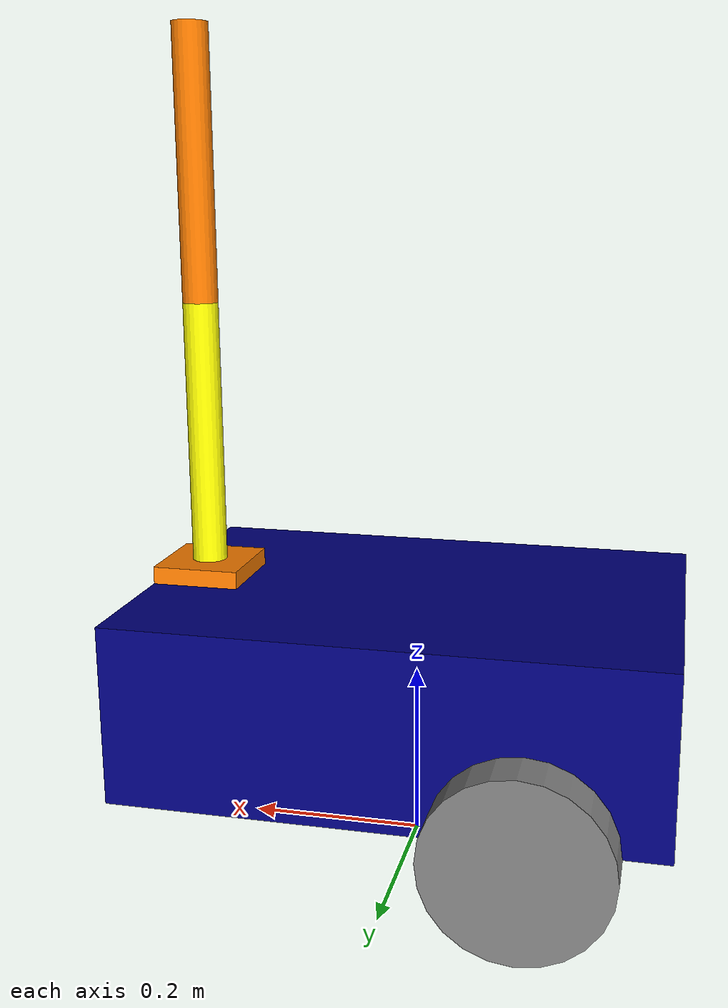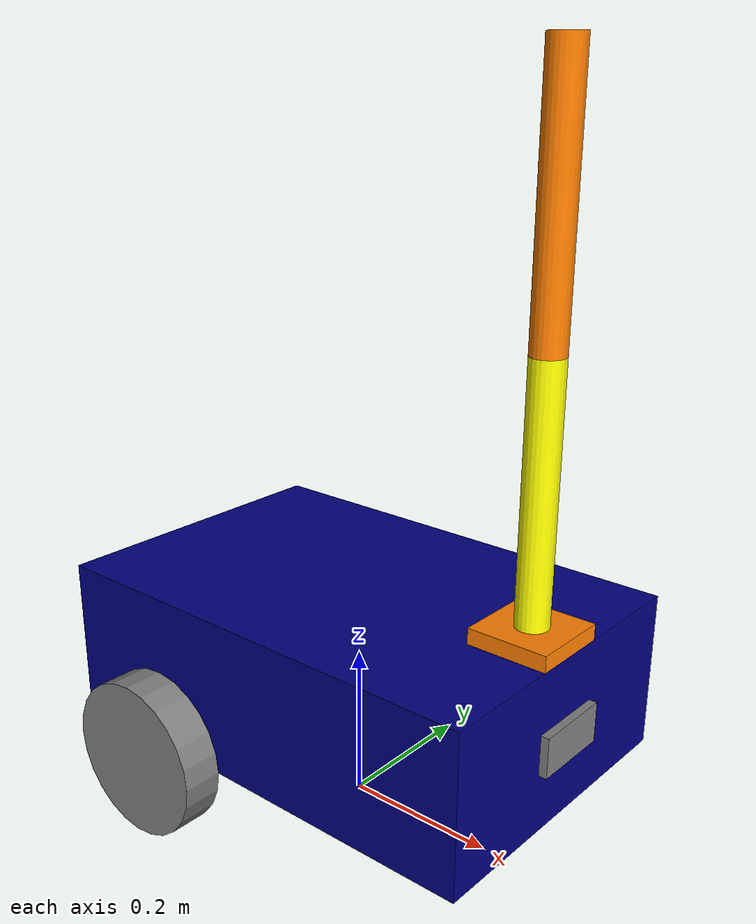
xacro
<?xml version ="1.0"?>
<robot name="mobile_base_with_arm" xmlns:xacro="http://www.ros.org/wiki/xacro">
    <xacro:include filename="$(find my_robot_description)/urdf/common_properties.xacro" />
    <xacro:include filename="$(find my_robot_description)/urdf/mobile_base.xacro" />
    <xacro:include filename="$(find my_robot_description)/urdf/mobile_base_gazebo.xacro" />
    <xacro:include filename="$(find mobile_base_with_arm)/urdf/two_link_arm_base.urdf.xacro" />
    <joint name="mobile_base_arm_base_joint" type="fixed">
        <parent link="base_link"/>
        <child link="arm_base_link"/>
        <origin xyz="${(base_length - arm_base_link_length)/2} 0 ${base_height}" rpy="0 0 0"/>
    </joint>
    <xacro:include filename="$(find my_robot_description)/urdf/camera_gazebo.xacro" />
</robot>

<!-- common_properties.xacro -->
<robot xmlns:xacro="http://www.ros.org/wiki/xacro">
    <material name="blue">
        <color rgba="0 0 0.5 1"/>
    </material>

    <material name="grey">
        <color rgba="0.5 0.5 0.5 1"/>
    </material>

    <xacro:macro name="box_inertia" params="m x y z o_xyz o_rpy">
        <inertial>
            <mass value="${m}"/>
            <origin xyz="${o_xyz}" rpy="${o_rpy}"/>
            <inertia
                ixx="${(1/12.0) * m * (y*y + z*z)}"
                ixy="0.0"
                ixz="0.0"
                iyy="${(1/12.0) * m * (x*x + z*z)}"
                iyz="0.0"
                izz="${(1/12.0) * m * (x*x + y*y)}"
            />
        </inertial>
    </xacro:macro>

    <xacro:macro name="cylinder_inertia" params="m r l o_xyz o_rpy">
        <inertial>
            <mass value="${m}"/>
            <origin xyz="${o_xyz}" rpy="${o_rpy}"/>
            <inertia
                ixx="${(1/12.0) * m * (3*r*r + l*l)}"
                ixy="0.0"
                ixz="0.0"
                iyy="${(1/12.0) * m * (3*r*r + l*l)}"
                iyz="0.0"
                izz="${(1/2.0) * m * r*r}"
            />
        </inertial>
    </xacro:macro>

    <xacro:macro name="sphere_inertia" params="m r o_xyz o_rpy">
        <inertial>
            <mass value="${m}"/>
            <origin xyz="${o_xyz}" rpy="${o_rpy}"/>
            <inertia
                ixx="${(2/5.0) * m * r*r}"
                ixy="0.0"
                ixz="0.0"
                iyy="${(2/5.0) * m * r*r}"
                iyz="0.0"
                izz="${(2/5.0) * m * r*r}"
            />
        </inertial>
    </xacro:macro>
</robot>

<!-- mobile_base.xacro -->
<robot xmlns:xacro="http://www.ros.org/wiki/xacro">
    <xacro:property name="base_length" value="0.6" />
    <xacro:property name="base_width" value="0.4" />
    <xacro:property name="base_height" value="0.2" />
    <xacro:property name="wheel_radius" value="0.1" />
    <xacro:property name="wheel_width" value="0.05" />
    <xacro:macro name="wheel_link" params="prefix">
        <link name="${prefix}_wheel_link">
            <visual>
                    <geometry>
                        <cylinder radius="${wheel_radius}" length="${wheel_width}" />
                    </geometry>
                    <origin xyz="0 0 0" rpy="${pi /2.0} 0 0" />
                <material name="grey"/>
            </visual>

            <collision>
                <geometry>
                    <sphere radius="${wheel_radius}" />
                </geometry>
                <origin xyz="0 0 0" rpy="0 0 0" />
            </collision>

            <xacro:cylinder_inertia m ="1.0" r="${wheel_radius}" l="${wheel_width}"
                                    o_xyz="0 0 0" o_rpy="${pi /2.0} 0 0"/>
        </link>
    </xacro:macro>

    <link name="base_footprint"/>
    <link name="base_link">
        <visual>
            <geometry>
                <box size="${base_length} ${base_width} ${base_height}" />
            </geometry>
            <origin xyz="0 0 ${base_height/2.0}" rpy="0 0 0" />
            <material name="blue"/>
        </visual>

        <collision>
            <geometry>
                <box size="${base_length} ${base_width} ${base_height}" />
            </geometry>
            <origin xyz="0 0 ${base_height/2.0}" rpy="0 0 0" />
        </collision>

        <xacro:box_inertia m ="5.0" x="${base_length}" y="${base_width}" z="${base_height}"
                            o_xyz="0 0 ${base_height/2.0}" o_rpy="0 0 0"/>
    </link>

    <xacro:wheel_link prefix="right"/>
    <xacro:wheel_link prefix="left"/>

    <link name="caster_wheel_link">
        <visual>
            <geometry>
                <sphere radius="${wheel_radius/2.0}" />
            </geometry>
            <origin xyz="0 0 0" rpy="0 0 0" />
            <material name="grey"/>
        </visual>

        <collision>
            <geometry>
                <sphere radius="${wheel_radius/2.0}" />
            </geometry>
            <origin xyz="0 0 0" rpy="0 0 0" />
        </collision>

        <xacro:sphere_inertia m ="0.5" r="${wheel_radius/2.0}"
                              o_xyz="0 0 0" o_rpy="0 0 0"/>
    </link>

    <joint name="base_joint" type="fixed">
        <parent link="base_footprint"/>
        <child link="base_link"/>
        <origin xyz="0 0 ${wheel_radius}" rpy="0 0 0"/>
    </joint>

    <joint name="base_right_wheel_joint" type="continuous">
        <parent link="base_link"/>
        <child link="right_wheel_link"/>
        <origin xyz="-${base_length/4.0} -${(base_width + wheel_width)/2.0} 0" rpy="0 0 0"/>
        <axis xyz="0 1 0"/>
    </joint>

    <joint name="base_left_wheel_joint" type="continuous">
        <parent link="base_link"/>
        <child link="left_wheel_link"/>
        <origin xyz="-${base_length/4.0} ${(base_width + wheel_width)/2.0} 0" rpy="0 0 0"/>
        <axis xyz="0 1 0"/>
    </joint>

    <joint name="base_caster_wheel_joint" type="fixed">
        <parent link="base_link"/>
        <child link="caster_wheel_link"/>
        <origin xyz="${base_length/3.0} 0 -${wheel_radius/2.0}" rpy="0 0 0"/>
    </joint>
</robot>

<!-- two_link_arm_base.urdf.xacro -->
<robot xmlns:xacro="http://www.ros.org/wiki/xacro">
    <xacro:property name="arm_base_link_length" value="0.1" />
    <xacro:property name="arm_base_link_width" value="0.1" />
    <xacro:property name="arm_base_link_height" value="0.02" />
    <xacro:property name="forearm_link_length" value="0.3" />
    <xacro:property name="forearm_link_radius" value="0.02" />
    <xacro:property name="hand_link_radius" value="0.02" />
    <xacro:property name="hand_link_length" value="0.3" />
    <xacro:include filename="common.xacro" />
    <link name="arm_base_link">
        <visual>
            <geometry>
                <box size="${arm_base_link_length} ${arm_base_link_width} ${arm_base_link_height}"/>
            </geometry>
            <origin xyz="0 0 ${arm_base_link_height / 2}" rpy="0 0 0"/>
            <material name="orange"/>
        </visual>
        <collision>
            <geometry>
                <box size="${arm_base_link_length} ${arm_base_link_width} ${arm_base_link_height}"/>
            </geometry>
            <origin xyz="0 0 ${arm_base_link_height / 2}" rpy="0 0 0"/>
        </collision>
        <xacro:box_inertia
            m="0.5"
            x="${arm_base_link_length}"
            y="${arm_base_link_width}"
            z="${arm_base_link_height}"
            o_xyz="0 0 ${arm_base_link_height / 2}"
            o_rpy="0 0 0"
        />
    </link>

    <link name="forearm_link">
        <visual>
            <geometry>
                <cylinder radius="${forearm_link_radius}" length="${forearm_link_length}"/>
            </geometry>
            <origin xyz="0 0 ${forearm_link_length / 2}" rpy="0 0 0"/>
            <material name="yellow"/>
        </visual>
        <collision>
            <geometry>
                <cylinder radius="${forearm_link_radius}" length="${forearm_link_length}"/>
            </geometry>
            <origin xyz="0 0 ${forearm_link_length / 2}" rpy="0 0 0"/>
        </collision>
        <xacro:cylinder_inertia
            m="0.3"
            r="${forearm_link_radius}"
            l="${forearm_link_length}"
            o_xyz="0 0 ${forearm_link_length / 2}"
            o_rpy="0 0 0"
        />
    </link>

    <link name="hand_link">
        <visual>
            <geometry>
                <cylinder radius="${hand_link_radius}" length="${hand_link_length}"/>
            </geometry>
            <origin xyz="0 0 ${hand_link_length / 2}" rpy="0 0 0"/>
            <material name="orange"/>
        </visual>
        <collision>
            <geometry>
                <cylinder radius="${hand_link_radius}" length="${hand_link_length}"/>
            </geometry>
            <origin xyz="0 0 ${hand_link_length / 2}" rpy="0 0 0"/>
        </collision>
        <xacro:cylinder_inertia
            m="0.3"
            r="${hand_link_radius}"
            l="${hand_link_length}"
            o_xyz="0 0 ${hand_link_length / 2}"
            o_rpy="0 0 0"
        />
    </link>

    <joint name="arm_base_forearm_joint" type="revolute">
        <parent link="arm_base_link"/>
        <child link="forearm_link"/>
        <origin xyz="0 0 ${arm_base_link_height}" rpy="0 0 0"/>
        <axis xyz="0 1 0"/>
        <limit lower="0" upper="${pi/2}" effort="100" velocity="100"/>
        <dynamics damping="0.3" friction="0.3"/>
    </joint>

    <joint name="forearm_hand_joint" type="revolute">
        <parent link="forearm_link"/>
        <child link="hand_link"/>
        <origin xyz="0 0 ${forearm_link_length}" rpy="0 0 0"/>
        <axis xyz="0 1 0"/>
        <limit lower="0" upper="${pi/2}" effort="100" velocity="100"/>
        <dynamics damping="0.3" friction="0.3"/>
    </joint>

    <gazebo>
        <plugin
            filename="gz-sim-joint-position-controller-system"
            name="gz::sim::systems::JointPositionController">
            <joint_name>arm_base_forearm_joint</joint_name>
            <p_gain>5.0</p_gain>
        </plugin>
    </gazebo>

    <gazebo>
        <plugin
            filename="gz-sim-joint-position-controller-system"
            name="gz::sim::systems::JointPositionController">
            <joint_name>forearm_hand_joint</joint_name>
            <p_gain>3.0</p_gain>
        </plugin>
    </gazebo>

    <gazebo>
        <plugin
            filename="gz-sim-joint-state-publisher-system"
            name="gz::sim::systems::JointStatePublisher">
            <joint_name>arm_base_forearm_joint</joint_name>
            <joint_name>forearm_hand_joint</joint_name>
        </plugin>
    </gazebo>
</robot>

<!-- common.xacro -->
<robot xmlns:xacro="http://www.ros.org/wiki/xacro">
    <material name="orange">
        <color rgba="1 0.5 0 1"/>
    </material>

    <material name="yellow">
        <color rgba="1 1 0 1"/>
    </material>

</robot>

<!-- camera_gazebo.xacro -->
<robot xmlns:xacro="http://www.ros.org/wiki/xacro">
    <xacro:property name="camera_length" value="0.01" />
    <xacro:property name="camera_width" value="0.1" />
    <xacro:property name="camera_height" value="0.05" />
    <link name="camera_link">
        <visual>
            <geometry>
                <box size="${camera_length} ${camera_width} ${camera_height}"/>
            </geometry>
        <material name="grey"/>
        </visual>
        <collision>
            <geometry>
                <box size="${camera_length} ${camera_width} ${camera_height}"/>
            </geometry>
        </collision>
        <xacro:box_inertia m="0.1" x="${camera_length}" y="${camera_width}" z="${camera_height}"
                            o_xyz="0 0 0" o_rpy="0 0 0" />
    </link>

    <link name="camera_optical_link"/>

    <joint name="camera_optical_joint" type="fixed">
        <parent link="camera_link" />
        <child link="camera_optical_link" />
        <origin xyz="0 0 0" rpy="${-pi/2} 0 ${-pi/2}" />
    </joint>
    <joint name="base_camera_joint" type="fixed">
        <parent link="base_link" />
        <child link="camera_link" />
        <origin xyz="${(base_length + camera_length)/2.0} 0 ${base_height/2.0}" rpy="0 0 0" />
    </joint>

    <gazebo reference="camera_link">
        <sensor type="camera" name="camera">
            <camera>
                <horizontal_fov>1.4</horizontal_fov>
                <image>
                    <width>640</width>
                    <height>480</height>
                    <format>R8G8B8</format>
                </image>
                <clip>
                    <near>0.1</near>
                    <far>15</far>
                </clip>
                <noise>
                    <type>gaussian</type>
                    <mean>0.0</mean>
                    <stddev>0.007</stddev>
                </noise>
                <optical_frame_id>camera_optical_link</optical_frame_id>
                <camera_info_topic>camera/camera_info</camera_info_topic>
            </camera>
            <always_on>1</always_on>
            <update_rate>20.0</update_rate>
            <visualize>true</visualize>
            <topic>camera/image_raw</topic>
        </sensor>
    </gazebo>
</robot>
